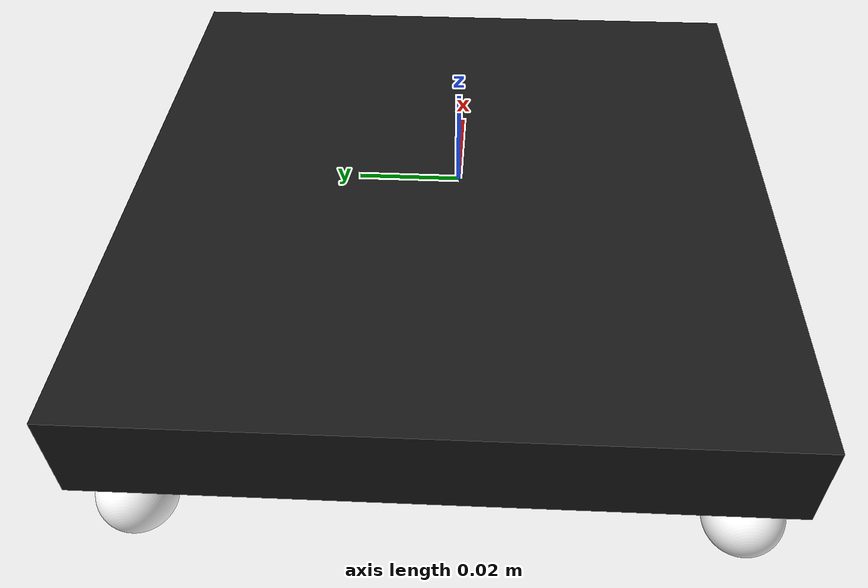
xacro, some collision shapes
<?xml version="1.0"?>
<robot name="rae"
  xmlns:xacro="http://ros.org/wiki/xacro">
  <xacro:arg name="sim_mode" default="false" />

  <xacro:include filename="inertial_moment_calc.xacro"/>
  <xacro:include filename="rae_ros2_control.urdf.xacro"/>
  <xacro:property name="deg_to_rad" value="0.01745329251994329577" />

  <link name="base_footprint"/>
  <joint name="dummy" type="fixed">
    <parent link="base_footprint"/>
    <child link="base_link"/>
    <origin rpy="0 0.0 0" xyz="0 0.0 0.0" />
  </joint>
  <link name="base_link">
    <xacro:body mass="0.00001" d="0.0000010" h="0.000003" w="0.00003">
      <origin xyz="0.0 0.0 0.0" rpy="0.0 0.0 0.0"/>
    </xacro:body>
  </link>
  <xacro:if value="$(arg sim_mode)">
    <gazebo reference="rae_imu_frame">
      <sensor name="rae_imu_sensor" type="imu">
        <always_on>1</always_on>
        <update_rate>10.0</update_rate>
        <visualize>true</visualize>
        <topic>rae/imu/data</topic>
        <frame_id>rae_imu_frame</frame_id>
        <ignition_frame_id>rae_imu_frame</ignition_frame_id>
      </sensor>
    </gazebo>
    <gazebo>
      <plugin
        filename="ignition-gazebo-imu-system" name="ignition::gazebo::systems::Imu">
      </plugin>
    </gazebo>
  </xacro:if>
  <link name="base_link_back">
    <xacro:body mass="0.00001" d="0.0000010" h="0.000003" w="0.00003">
      <origin xyz="0.0 0.0 0.0" rpy="0.0 0.0 0"/>
    </xacro:body>
  </link>
  <joint name="base_link_back_joint" type="fixed">
    <parent link="base_link"/>
    <child link="base_link_back"/>
    <origin rpy="0 0.0 3.14" xyz="0.0 0.0 0.0" />
  </joint>
  <link name="chassis">
    <xacro:body mass="0.360" d="0.125" h="0.028" w="0.1256">
      <origin xyz="0 0.014 0.0" rpy="0.0 0.0 0.0"/>
    </xacro:body>

    <collision>
      <origin rpy="0.0 0.0 0.0" xyz="0 0.018 0"/>
      <geometry>
        <box size="0.1 0.015 0.1"/>
      </geometry>
    </collision>

    <visual>
      <origin rpy="0.0 3.14 0.0" xyz="0.0 0.0 0.0"/>
      <geometry>
        <mesh filename="package://rae_description/urdf/models/RAE-TOP-ASSY_0417.STL" scale="1.0 1.0 1.0"/>
      </geometry>
      <material name="mat">
        <lighting>1</lighting>
        <color rgba="0.1 0.1 0.1 1.0"/>
        <shader type='pixel'/>
        <emissive>0 0 0 1</emissive>
      </material>
      <transparency>0</transparency>
      <cast_shadows>1</cast_shadows>

    </visual>
  </link>
  <joint name="base_chassis_joint" type="fixed">
    <parent link="base_link"/>
    <child link="chassis"/>
    <origin rpy="1.57 0.0 1.57" xyz="-0.0307 0.0 0.0" />
  </joint>

  <link name="left_wheel">
    <xacro:wheels mass="0.008" h="0.011" r="0.0119">
      <origin xyz="0.0 0.0 -0.0055" rpy="0.0 0.0 0.0"/>
    </xacro:wheels>

    <collision>
      <origin rpy="0.0 0.0 0.0" xyz="0.0 0.0 -0.0055"/>
      <geometry>
        <cylinder length="0.011" radius="0.0119"/>
      </geometry>
    </collision>

    <visual>
      <origin rpy="0.0 0.0 0.0" xyz="0.0 0.0 -0.0055"/>
      <geometry>
        <cylinder length="0.011" radius="0.0119"/>
      </geometry>
    </visual>
  </link>

  <link name="right_wheel">
    <xacro:wheels mass="0.008" h="0.011" r="0.0119">
      <origin xyz="0.0 0.0 -0.0055" rpy="0.0 0.0 0.0"/>
    </xacro:wheels>
    <collision>
      <origin rpy="0.0 0.0 0.0" xyz="0.0 0.0 -0.0055"/>
      <geometry>
        <cylinder length="0.011" radius="0.0119"/>
      </geometry>
    </collision>

    <visual>
      <origin rpy="0.0 0.0 0.0" xyz="0.0 0.0 -0.0055"/>
      <geometry>
        <cylinder length="0.011" radius="0.0119"/>
      </geometry>
    </visual>
  </link>

  <joint name='left_wheel_joint' type='continuous'>
    <origin rpy="1.57 0.0 0.00 " xyz="0.0 0.042 0.0052"/>
    <child link="left_wheel"/>
    <parent link="base_link"/>
    <axis rpy="0 0 0" xyz="0 0 -1"/>
  </joint>

  <joint name='right_wheel_joint' type='continuous'>
    <origin rpy="-1.57 0.0 0.0 " xyz="0.0 -0.042 0.0052"/>
    <child link="right_wheel"/>
    <parent link="base_link"/>
    <axis rpy="0 0 0" xyz="0 0 1"/>
  </joint>

  <link name="left_caster_wheel">
    <xacro:caster_wheels mass="0.008" r="0.005">
      <origin xyz="0.0 0.0 0.0" rpy="0.0 0.0 0.0"/>
    </xacro:caster_wheels>
    <collision>
      <origin rpy="0.0 0.0 0.0" xyz="0.0 0.0 0.0"/>
      <geometry>
        <sphere radius="0.006"/>
      </geometry>
    </collision>

    <visual>
      <origin rpy="0.0 0.0 0.0" xyz="0.0 0.0 0.0"/>
      <geometry>
        <mesh filename="package://rae_description/urdf/models/caster-wheel.stl" scale="1.0 1.0 1.0"/>
      </geometry>
      <material name="mat">
        <lighting>1</lighting>
        <color rgba="1.0 1.0 1.0 1.0"/>
        <shader type='pixel'/>
        <emissive>0 0 0 1</emissive>
      </material>
      <transparency>0</transparency>
      <cast_shadows>1</cast_shadows>

    </visual>
  </link>
  <xacro:if value="$(arg sim_mode)">
    <gazebo reference="left_caster_wheel">
        <mu1>0.0001</mu1>
        <mu2>0.0001</mu2>
    </gazebo>
  </xacro:if>

  <joint name="base_left_caster_wheel" type="fixed">
    <parent link="base_link"/>
    <child link="left_caster_wheel"/>
    <origin rpy="0.0 0.0 0.0" xyz="-0.0735 0.0445 -0.001" />
  </joint>

  <link name="right_caster_wheel">
    <xacro:caster_wheels mass="0.008" r="0.005">
      <origin xyz="0.0 0.0 0.0" rpy="0.0 0.0 0.0"/>
    </xacro:caster_wheels>
    <collision>
      <origin rpy="0.0 0.0 0.0" xyz="0.0 0.0 0.0"/>
      <geometry>
        <sphere radius="0.006"/>
      </geometry>
    </collision>

    <visual>
      <origin rpy="0.0 0.0 0.0" xyz="0.0 0.0 0.0"/>
      <geometry>
        <mesh filename="package://rae_description/urdf/models/caster-wheel.stl" scale="1.0 1.0 1.0"/>
      </geometry>
      <material name="mat">
        <lighting>1</lighting>
        <color rgba="1.0 1.0 1.0 1.0"/>
        <shader type='pixel'/>
        <emissive>0 0 0 1</emissive>
      </material>
      <transparency>0</transparency>
      <cast_shadows>1</cast_shadows>

    </visual>
  </link>
  <xacro:if value="$(arg sim_mode)">
    <gazebo reference="right_caster_wheel">
        <mu1>0.0001</mu1>
        <mu2>0.0001</mu2>
    </gazebo>
  </xacro:if>

  <joint name="base_right_caster_wheel" type="fixed">
    <parent link="base_link"/>
    <child link="right_caster_wheel"/>
    <origin rpy="0.0 0.0 0.0" xyz="-0.0735 -0.0445 -0.001" />
  </joint>

  <link name="rae_rgb_camera_frame">
    <xacro:body mass="0.001" d="0.010" h="0.03" w="0.03">
      <origin xyz="0.0 0.0 0.0" rpy="0.0 0.0 0.0"/>
    </xacro:body>

  </link>

  <link name="rae_rgb_camera_optical_frame">
    <xacro:body mass="0.00001" d="0.0000010" h="0.000003" w="0.00003">
      <origin xyz="0.0 0.0 0.0" rpy="0.0 0.0 0.0"/>
    </xacro:body>

  </link>

  <joint name="rae_rgb_camera_optical_frame_joint" type="fixed">
    <origin xyz="0.0051 0 0" rpy="3.14 3.14 0.0"/>
    <parent link="rae_rgb_camera_frame"/>
    <child link="rae_rgb_camera_optical_frame"/>
  </joint>

  <joint name="rgb_camera_joint" type="fixed">
    <parent link="chassis"/>
    <child link="rae_rgb_camera_frame"/>
    <origin xyz="-0.025 0.0101195 0.0517014" rpy="-0.523599 0 0"/>
  </joint>

  <link name="rae_left_camera_frame">
    <xacro:body mass="0.001" d="0.010" h="0.03" w="0.03">
      <origin xyz="0.0 0.0 0.0" rpy="0.0 0.0 0.0"/>
    </xacro:body>

  </link>

  <joint name="rae_left_camera_joint" type="fixed">
    <parent link="chassis"/>
    <child link="rae_left_camera_frame"/>
    <origin xyz="0.0375 0.0100195 0.0515282" rpy="-0.523599 0 0"/>
  </joint>

  <link name="rae_left_camera_optical_frame">
    <xacro:body mass="0.00001" d="0.0000010" h="0.000003" w="0.00003">
      <origin xyz="0.0 0.0 0.0" rpy="0.0 0.0 0.0"/>
    </xacro:body>

  </link>

  <joint name="rae_left_camera_optical_frame_joint" type="fixed">
    <origin xyz="0.0 0 0" rpy="3.14 3.14 0.0"/>
    <parent link="rae_left_camera_frame"/>
    <child link="rae_left_camera_optical_frame"/>
  </joint>

  <link name="rae_right_camera_frame">
    <xacro:body mass="0.001" d="0.010" h="0.03" w="0.03">
      <origin xyz="0.0 0.0 0.0" rpy="0.0 0.0 0.0"/>
    </xacro:body>

  </link>

  <joint name="rae_right_camera_joint" type="fixed">
    <parent link="chassis"/>
    <child link="rae_right_camera_frame"/>
    <origin xyz="-0.0375 0.0100195 0.0515282" rpy="-0.523599 0 0"/>
  </joint>

  <link name="rae_right_camera_optical_frame">
    <xacro:body mass="0.00001" d="0.0000010" h="0.000003" w="0.00003">
      <origin xyz="0.0 0.0 0.0" rpy="0.0 0.0 0.0"/>
    </xacro:body>

  </link>

  <joint name="rae_right_camera_optical_frame_joint" type="fixed">
    <origin xyz="0.000 0 0" rpy="3.14 3.14 0.0"/>
    <parent link="rae_right_camera_frame"/>
    <child link="rae_right_camera_optical_frame"/>
  </joint>

  <link name="rae_right_back_camera_frame">
    <xacro:body mass="0.001" d="0.010" h="0.03" w="0.03">
      <origin xyz="0.0 0.0 0.0" rpy="0.0 0.0 0.0"/>
    </xacro:body>

  </link>

  <joint name="rae_right_back_camera_joint" type="fixed">
    <parent link="chassis"/>
    <child link="rae_right_back_camera_frame"/>
    <origin xyz="-0.0375 0.0100195 -0.0515282" rpy="0.523599 0 0"/>
  </joint>

  <link name="rae_right_back_camera_optical_frame">
    <xacro:body mass="0.00001" d="0.0000010" h="0.000003" w="0.00003">
      <origin xyz="0.0 0.0 0.0" rpy="0.0 0.0 0.0"/>
    </xacro:body>

  </link>

  <joint name="rae_right_back_camera_optical_frame_joint" type="fixed">
    <origin xyz="0.000 0 0" rpy="3.14 0.0 0.0"/>
    <parent link="rae_right_back_camera_frame"/>
    <child link="rae_right_back_camera_optical_frame"/>
  </joint>

  <link name="rae_left_back_camera_frame">
    <xacro:body mass="0.001" d="0.010" h="0.03" w="0.03">
      <origin xyz="0.0 0.0 0.0" rpy="0.0 0.0 0.0"/>
    </xacro:body>

  </link>

  <joint name="rae_left_back_camera_joint" type="fixed">
    <parent link="chassis"/>
    <child link="rae_left_back_camera_frame"/>
    <origin xyz="0.0375 0.0100195 -0.0515282" rpy="0.523599 0 0"/>
  </joint>

  <link name="rae_left_back_camera_optical_frame">
    <xacro:body mass="0.00001" d="0.0000010" h="0.000003" w="0.00003">
      <origin xyz="0.0 0.0 0.0" rpy="0.0 0.0 0.0"/>
    </xacro:body>

  </link>

  <joint name="rae_left_back_camera_optical_frame_joint" type="fixed">
    <origin xyz="0.000 0 0" rpy="3.14 0.0 0.0"/>
    <parent link="rae_left_back_camera_frame"/>
    <child link="rae_left_back_camera_optical_frame"/>
  </joint>

  <link name="rae_imu_frame"/>
  <joint name="rae_imu_joint" type="fixed">
    <origin xyz="0 0 0" rpy="0 0 0"/>
    <parent link="base_link"/>
    <child link="rae_imu_frame"/>
  </joint>

  <xacro:rae_ros2_control sim_mode="$(arg sim_mode)"/>

</robot>

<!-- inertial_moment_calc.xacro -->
<robot xmlns:xacro="http://www.ros.org/wiki/xacro" >

    <xacro:macro name="body" params="mass d h w *origin">
        <inertial>
            <xacro:insert_block name="origin"/>
            <mass value="${mass}" />
            <inertia
                ixx="${(1/12) * mass * (h*h+w*w)}"
                ixy="0.0"
                ixz="0.0"
                iyy="${(1/12) * mass * (d*d+w*w)}"
                iyz="0.0"
                izz="${(1/12) * mass * (d*d+h*h)}" />
        </inertial>
    </xacro:macro>

    <xacro:macro name="wheels" params="mass h r *origin">
        <inertial>
            <xacro:insert_block name="origin"/>
            <mass value="${mass}" />
            <inertia
                ixx="${(1/2) * mass * (r*r)}"  ixy="0.0" ixz="0.0"
                iyy="${(1/12) * mass * (3*r*r + h*h)}" iyz="0.0"
                izz="${(1/12) * mass * (3*r*r + h*h)}"/>
        </inertial>
    </xacro:macro>

    <xacro:macro name="caster_wheels" params="mass r *origin">
        <inertial>
            <xacro:insert_block name="origin"/>
            <mass value="${mass}" />
            <inertia
                ixx="${(2/5) * mass * (r*r)}"  ixy="0.0" ixz="0.0"
                iyy="${(2/5) * mass * (r*r)}" iyz="0.0"
                izz="${(2/5) * mass * (r*r)}"/>
        </inertial>
    </xacro:macro>

</robot>
